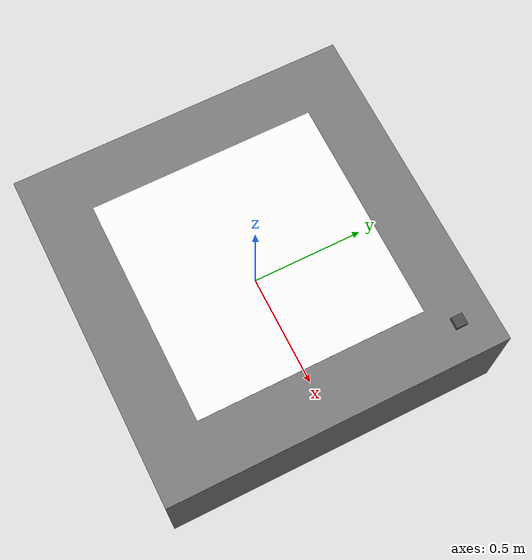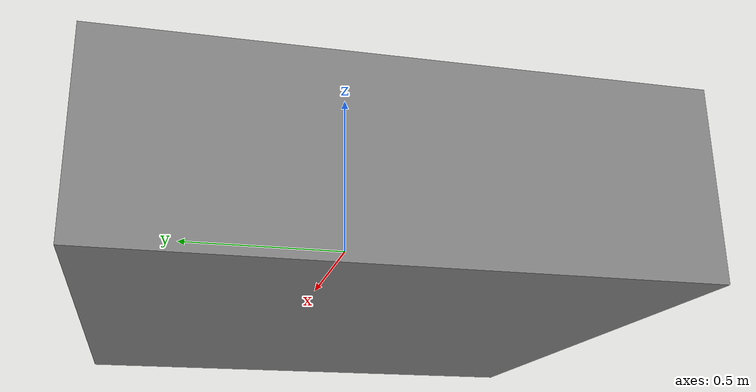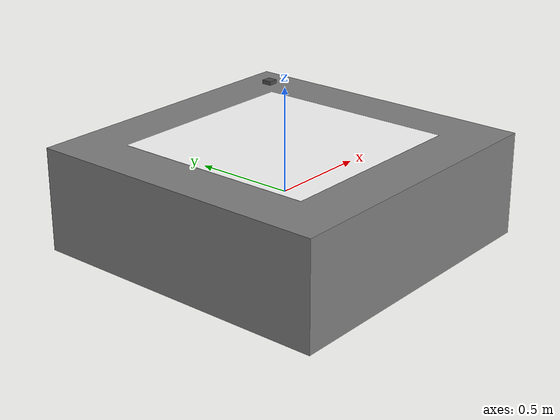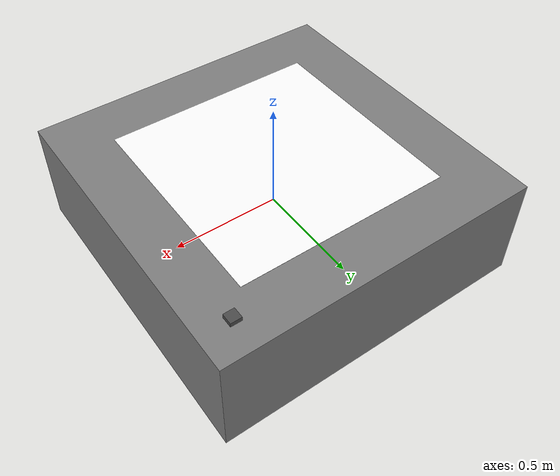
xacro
<?xml version="1.0"?>
<robot name="platform" xmlns:xacro="http://www.ros.org/wiki/xacro">
  <!-- Include the URDF and Gazebo files -->
  <xacro:include filename="$(find quadrotor_description)/urdf/platform/platform.urdf.xacro" />
  <xacro:include filename="$(find quadrotor_description)/urdf/platform/platform.gazebo" />
</robot>

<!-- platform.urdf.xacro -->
<robot name="platform" xmlns:xacro="http://www.ros.org/wiki/xacro">

  <!-- Platform dimensions -->
  <xacro:property name="platform_length" value="1.5" />
  <xacro:property name="platform_width" value="1.5" />
  <xacro:property name="platform_height" value="0.5" />
  <xacro:property name="marker_size" value="1.0" />

  <!-- Base link -->
  <link name="base_link">
    <inertial>
      <origin xyz="0 0 0" rpy="0 0 0"/>
      <mass value="50.0"/>
      <inertia ixx="9.375" ixy="0.0" ixz="0.0" iyy="9.375" iyz="0.0" izz="18.75"/>
    </inertial>
    <visual>
      <origin xyz="0 0 0" rpy="0 0 0"/>
      <geometry>
        <box size="${platform_length} ${platform_width} ${platform_height}"/>
      </geometry>
      <material name="platform_grey">
        <color rgba="0.5 0.5 0.5 1"/>
      </material>
    </visual>
    <collision>
      <origin xyz="0 0 0" rpy="0 0 0"/>
      <geometry>
        <box size="${platform_length} ${platform_width} ${platform_height}"/>
      </geometry>
    </collision>
  </link>

  <!-- ArUco marker on top surface -->
  <link name="marker_link">
    <visual>
      <origin xyz="0 0 0.001" rpy="0 0 0"/>
      <geometry>
        <box size="${marker_size} ${marker_size} 0.001"/>
      </geometry>
      <material name="marker_material">
        <color rgba="1 1 1 1"/>
      </material>
    </visual>
  </link>

  <joint name="marker_joint" type="fixed">
    <parent link="base_link"/>
    <child link="marker_link"/>
    <origin xyz="0 0 ${platform_height/2}" rpy="0 0 0"/>
  </joint>

  <!-- GPS link -->
  <link name="gps_link">
    <inertial>
      <origin xyz="0 0 0" rpy="0 0 0"/>
      <mass value="0.1"/>
      <inertia ixx="0.001" ixy="0.0" ixz="0.0" iyy="0.001" iyz="0.0" izz="0.001"/>
    </inertial>
    <visual>
      <origin xyz="0 0 0" rpy="0 0 0"/>
      <geometry>
        <box size="0.05 0.05 0.02"/>
      </geometry>
      <material name="gps_grey">
        <color rgba="0.3 0.3 0.3 1"/>
      </material>
    </visual>
  </link>

  <joint name="gps_joint" type="fixed">
    <parent link="base_link"/>
    <child link="gps_link"/>
    <origin xyz="0.6 0.6 ${platform_height/2 + 0.01}" rpy="0 0 0"/>
  </joint>

</robot>
